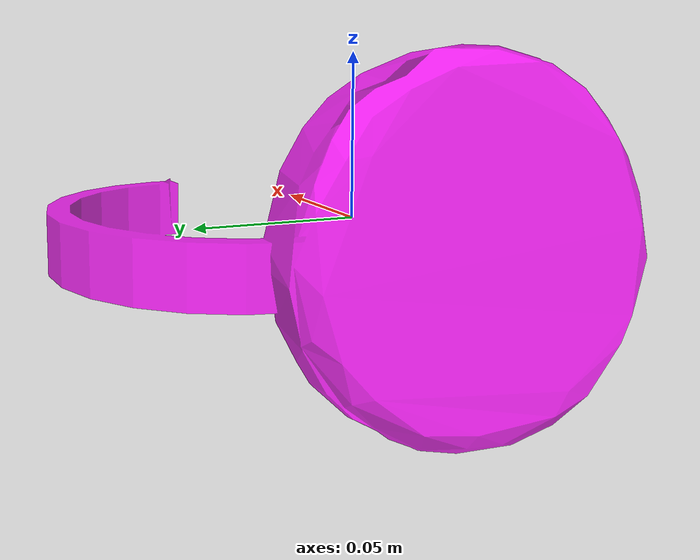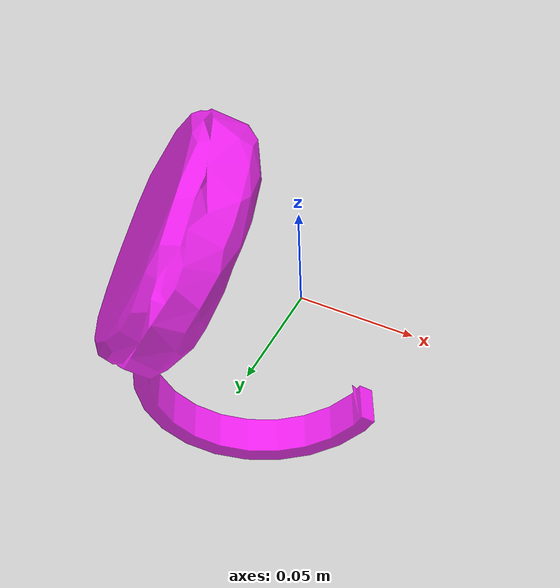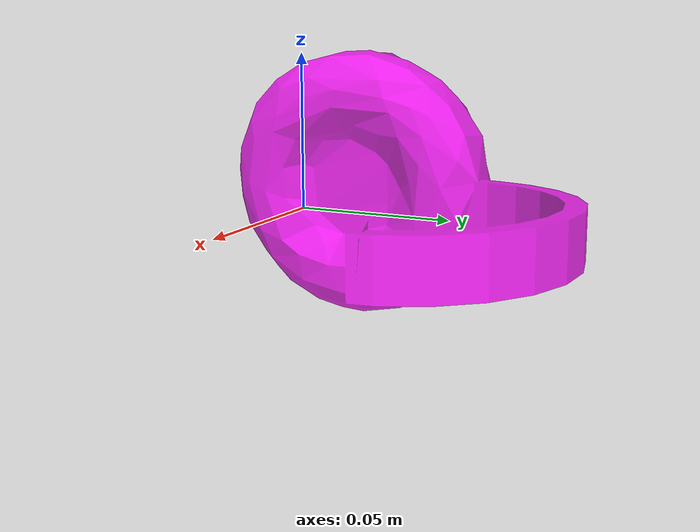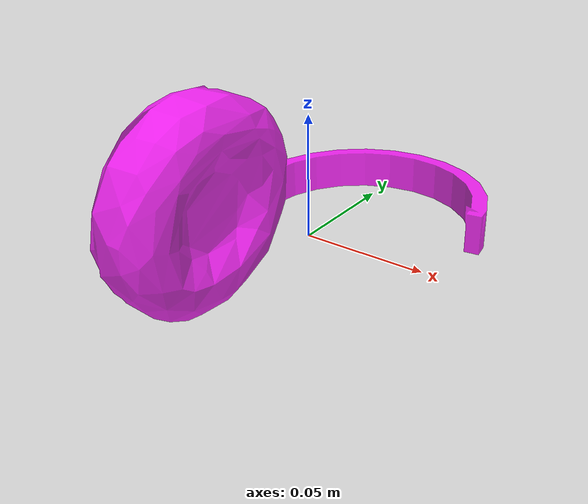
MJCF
<mujoco model="bottom_watertight_tiny">
  <default>
    <default group="2" type="mesh" contype="0" conaffinity="0">
      <geom group="2" type="mesh" contype="0" conaffinity="0"/>
    </default>
    <default group="3" type="mesh">
      <geom group="3" type="mesh"/>
    </default>
  </default>
  <asset>
    <mesh file="bottom_watertight_tiny.obj"/>
    <mesh file="bottom_watertight_tiny_collision_0.obj"/>
    <mesh file="bottom_watertight_tiny_collision_1.obj"/>
    <mesh file="bottom_watertight_tiny_collision_2.obj"/>
    <mesh file="bottom_watertight_tiny_collision_3.obj"/>
    <mesh file="bottom_watertight_tiny_collision_4.obj"/>
    <mesh file="bottom_watertight_tiny_collision_5.obj"/>
    <mesh file="bottom_watertight_tiny_collision_6.obj"/>
    <mesh file="bottom_watertight_tiny_collision_7.obj"/>
    <mesh file="bottom_watertight_tiny_collision_8.obj"/>
    <mesh file="bottom_watertight_tiny_collision_9.obj"/>
    <mesh file="bottom_watertight_tiny_collision_10.obj"/>
    <mesh file="bottom_watertight_tiny_collision_11.obj"/>
    <mesh file="bottom_watertight_tiny_collision_12.obj"/>
    <mesh file="bottom_watertight_tiny_collision_13.obj"/>
    <mesh file="bottom_watertight_tiny_collision_14.obj"/>
    <mesh file="bottom_watertight_tiny_collision_15.obj"/>
    <mesh file="bottom_watertight_tiny_collision_16.obj"/>
    <mesh file="bottom_watertight_tiny_collision_17.obj"/>
    <mesh file="bottom_watertight_tiny_collision_18.obj"/>
    <mesh file="bottom_watertight_tiny_collision_19.obj"/>
    <mesh file="bottom_watertight_tiny_collision_20.obj"/>
    <mesh file="bottom_watertight_tiny_collision_21.obj"/>
    <mesh file="bottom_watertight_tiny_collision_22.obj"/>
    <mesh file="bottom_watertight_tiny_collision_23.obj"/>
    <mesh file="bottom_watertight_tiny_collision_24.obj"/>
    <mesh file="bottom_watertight_tiny_collision_25.obj"/>
    <mesh file="bottom_watertight_tiny_collision_26.obj"/>
    <mesh file="bottom_watertight_tiny_collision_27.obj"/>
    <mesh file="bottom_watertight_tiny_collision_28.obj"/>
    <mesh file="bottom_watertight_tiny_collision_29.obj"/>
    <mesh file="bottom_watertight_tiny_collision_30.obj"/>
    <mesh file="bottom_watertight_tiny_collision_31.obj"/>
    <mesh file="bottom_watertight_tiny_collision_32.obj"/>
    <mesh file="bottom_watertight_tiny_collision_33.obj"/>
    <mesh file="bottom_watertight_tiny_collision_34.obj"/>
    <mesh file="bottom_watertight_tiny_collision_35.obj"/>
    <mesh file="bottom_watertight_tiny_collision_36.obj"/>
    <mesh file="bottom_watertight_tiny_collision_37.obj"/>
    <mesh file="bottom_watertight_tiny_collision_38.obj"/>
    <mesh file="bottom_watertight_tiny_collision_39.obj"/>
    <mesh file="bottom_watertight_tiny_collision_40.obj"/>
    <mesh file="bottom_watertight_tiny_collision_41.obj"/>
    <mesh file="bottom_watertight_tiny_collision_42.obj"/>
    <mesh file="bottom_watertight_tiny_collision_43.obj"/>
    <mesh file="bottom_watertight_tiny_collision_44.obj"/>
    <mesh file="bottom_watertight_tiny_collision_45.obj"/>
    <mesh file="bottom_watertight_tiny_collision_46.obj"/>
    <mesh file="bottom_watertight_tiny_collision_47.obj"/>
    <mesh file="bottom_watertight_tiny_collision_48.obj"/>
    <mesh file="bottom_watertight_tiny_collision_49.obj"/>
    <mesh file="bottom_watertight_tiny_collision_50.obj"/>
    <mesh file="bottom_watertight_tiny_collision_51.obj"/>
    <mesh file="bottom_watertight_tiny_collision_52.obj"/>
    <mesh file="bottom_watertight_tiny_collision_53.obj"/>
    <mesh file="bottom_watertight_tiny_collision_54.obj"/>
    <mesh file="bottom_watertight_tiny_collision_55.obj"/>
    <mesh file="bottom_watertight_tiny_collision_56.obj"/>
    <mesh file="bottom_watertight_tiny_collision_57.obj"/>
    <mesh file="bottom_watertight_tiny_collision_58.obj"/>
    <mesh file="bottom_watertight_tiny_collision_59.obj"/>
    <mesh file="bottom_watertight_tiny_collision_60.obj"/>
    <mesh file="bottom_watertight_tiny_collision_61.obj"/>
    <mesh file="bottom_watertight_tiny_collision_62.obj"/>
    <mesh file="bottom_watertight_tiny_collision_63.obj"/>
    <mesh file="bottom_watertight_tiny_collision_64.obj"/>
    <mesh file="bottom_watertight_tiny_collision_65.obj"/>
    <mesh file="bottom_watertight_tiny_collision_66.obj"/>
    <mesh file="bottom_watertight_tiny_collision_67.obj"/>
    <mesh file="bottom_watertight_tiny_collision_68.obj"/>
    <mesh file="bottom_watertight_tiny_collision_69.obj"/>
    <mesh file="bottom_watertight_tiny_collision_70.obj"/>
  </asset>
  <worldbody>
    <body name="bottom_watertight_tiny">
      <freejoint/>
      <geom mesh="bottom_watertight_tiny" group="2" type="mesh" rgba="1 0 1 0.8" contype="0" conaffinity="0"/>
      <geom mesh="bottom_watertight_tiny_collision_0" rgba="0.6592867806257849 0.3573174434217816 0.4608608192719037 1" group="3" type="mesh"/>
      <geom mesh="bottom_watertight_tiny_collision_1" rgba="0.6421418861547743 0.16549493223008138 0.39859282556516074 1" group="3" type="mesh"/>
      <geom mesh="bottom_watertight_tiny_collision_2" rgba="0.25903409442931447 0.5232087841733615 0.23000872851921306 1" group="3" type="mesh"/>
      <geom mesh="bottom_watertight_tiny_collision_3" rgba="0.8949484596101227 0.08846913889708086 0.49144810260029437 1" group="3" type="mesh"/>
      <geom mesh="bottom_watertight_tiny_collision_4" rgba="0.9504968530676672 0.15953292202656155 0.8555873943349893 1" group="3" type="mesh"/>
      <geom mesh="bottom_watertight_tiny_collision_5" rgba="0.0688235186758841 0.25812536121862717 0.7828257225277115 1" group="3" type="mesh"/>
      <geom mesh="bottom_watertight_tiny_collision_6" rgba="0.37358584604218315 0.24829431422860215 0.3319657404883527 1" group="3" type="mesh"/>
      <geom mesh="bottom_watertight_tiny_collision_7" rgba="0.5370268802678714 0.11432325926180176 0.7425296335953399 1" group="3" type="mesh"/>
      <geom mesh="bottom_watertight_tiny_collision_8" rgba="0.8094767638309782 0.8125778111373577 0.5462056215809941 1" group="3" type="mesh"/>
      <geom mesh="bottom_watertight_tiny_collision_9" rgba="0.9728540350593962 0.47191884233278003 0.4324836731604126 1" group="3" type="mesh"/>
      <geom mesh="bottom_watertight_tiny_collision_10" rgba="0.14151535819988081 0.835298778236344 0.14852168392855514 1" group="3" type="mesh"/>
      <geom mesh="bottom_watertight_tiny_collision_11" rgba="0.19657265281434577 0.03422679006173779 0.8627030313223141 1" group="3" type="mesh"/>
      <geom mesh="bottom_watertight_tiny_collision_12" rgba="0.5078409871926963 0.685863991520105 0.9638418949299303 1" group="3" type="mesh"/>
      <geom mesh="bottom_watertight_tiny_collision_13" rgba="0.5605819212673512 0.7629697077007458 0.8336782968436022 1" group="3" type="mesh"/>
      <geom mesh="bottom_watertight_tiny_collision_14" rgba="0.6591200649319167 0.7562925271720268 0.41302351799834836 1" group="3" type="mesh"/>
      <geom mesh="bottom_watertight_tiny_collision_15" rgba="0.05611794386696223 0.9159238374001146 0.390192273891508 1" group="3" type="mesh"/>
      <geom mesh="bottom_watertight_tiny_collision_16" rgba="0.23613102702801825 0.9569059396012705 0.8900672032648014 1" group="3" type="mesh"/>
      <geom mesh="bottom_watertight_tiny_collision_17" rgba="0.08942288681385013 0.6638038930548412 0.10806716244361636 1" group="3" type="mesh"/>
      <geom mesh="bottom_watertight_tiny_collision_18" rgba="0.7766423702092502 0.6738966531965168 0.8817285019527242 1" group="3" type="mesh"/>
      <geom mesh="bottom_watertight_tiny_collision_19" rgba="0.3530166305500758 0.8812191663436311 0.10974463077678964 1" group="3" type="mesh"/>
      <geom mesh="bottom_watertight_tiny_collision_20" rgba="0.7540260213148359 0.6454005959551651 0.8440433869612437 1" group="3" type="mesh"/>
      <geom mesh="bottom_watertight_tiny_collision_21" rgba="0.11902755166587586 0.08558143969071796 0.12165809542181827 1" group="3" type="mesh"/>
      <geom mesh="bottom_watertight_tiny_collision_22" rgba="0.021528967313941605 0.5789646903747939 0.020036392680441106 1" group="3" type="mesh"/>
      <geom mesh="bottom_watertight_tiny_collision_23" rgba="0.27630851757044284 0.4213725562395735 0.160200085569138 1" group="3" type="mesh"/>
      <geom mesh="bottom_watertight_tiny_collision_24" rgba="0.3324997585001045 0.5389742299984221 0.13399605959835337 1" group="3" type="mesh"/>
      <geom mesh="bottom_watertight_tiny_collision_25" rgba="0.10110214945671181 0.25269117889427695 0.8075444169842204 1" group="3" type="mesh"/>
      <geom mesh="bottom_watertight_tiny_collision_26" rgba="0.7607105244820503 0.8680255388937664 0.9139045711359064 1" group="3" type="mesh"/>
      <geom mesh="bottom_watertight_tiny_collision_27" rgba="0.27506251714338736 0.32780600103907076 0.43579511582823627 1" group="3" type="mesh"/>
      <geom mesh="bottom_watertight_tiny_collision_28" rgba="0.8041322794286316 0.223978211918462 0.1891117864382309 1" group="3" type="mesh"/>
      <geom mesh="bottom_watertight_tiny_collision_29" rgba="0.5345625270060843 0.2620257672368006 0.14391377821732565 1" group="3" type="mesh"/>
      <geom mesh="bottom_watertight_tiny_collision_30" rgba="0.652700749036207 0.9013728460390065 0.7938621784171178 1" group="3" type="mesh"/>
      <geom mesh="bottom_watertight_tiny_collision_31" rgba="0.233107953025806 0.9067150855921511 0.7995624393188909 1" group="3" type="mesh"/>
      <geom mesh="bottom_watertight_tiny_collision_32" rgba="0.12182268474486901 0.19359569573132007 0.2573811906136131 1" group="3" type="mesh"/>
      <geom mesh="bottom_watertight_tiny_collision_33" rgba="0.3491489947702512 0.32065117589064895 0.973535286835817 1" group="3" type="mesh"/>
      <geom mesh="bottom_watertight_tiny_collision_34" rgba="0.9751054938947744 0.25413113194175696 0.013716933502539774 1" group="3" type="mesh"/>
      <geom mesh="bottom_watertight_tiny_collision_35" rgba="0.6822468375553342 0.4928863216099175 0.7440045447992705 1" group="3" type="mesh"/>
      <geom mesh="bottom_watertight_tiny_collision_36" rgba="0.9086853365417981 0.8564702728131397 0.4803831430719998 1" group="3" type="mesh"/>
      <geom mesh="bottom_watertight_tiny_collision_37" rgba="0.2285100091055996 0.15915581390260802 0.7341051147287071 1" group="3" type="mesh"/>
      <geom mesh="bottom_watertight_tiny_collision_38" rgba="0.4986278842664654 0.06474358652168444 0.09652304981133153 1" group="3" type="mesh"/>
      <geom mesh="bottom_watertight_tiny_collision_39" rgba="0.9796670141819864 0.9554716003047216 0.3573939305046604 1" group="3" type="mesh"/>
      <geom mesh="bottom_watertight_tiny_collision_40" rgba="0.9551242444540308 0.5008812488243651 0.20924691897404046 1" group="3" type="mesh"/>
      <geom mesh="bottom_watertight_tiny_collision_41" rgba="0.33090623792070495 0.9612867806306604 0.44482835952169664 1" group="3" type="mesh"/>
      <geom mesh="bottom_watertight_tiny_collision_42" rgba="0.5672957824447522 0.06304569036363916 0.24746420713781958 1" group="3" type="mesh"/>
      <geom mesh="bottom_watertight_tiny_collision_43" rgba="0.03609926856072909 0.393234919066786 0.024993299604860075 1" group="3" type="mesh"/>
      <geom mesh="bottom_watertight_tiny_collision_44" rgba="0.5910013348488263 0.846569751437691 0.12936627037688575 1" group="3" type="mesh"/>
      <geom mesh="bottom_watertight_tiny_collision_45" rgba="0.9106012111475176 0.9211658025137599 0.19429614040614862 1" group="3" type="mesh"/>
      <geom mesh="bottom_watertight_tiny_collision_46" rgba="0.4288711160868284 0.10412284945914152 0.3812558676711314 1" group="3" type="mesh"/>
      <geom mesh="bottom_watertight_tiny_collision_47" rgba="0.0793794248896651 0.07393240226495779 0.885805332066064 1" group="3" type="mesh"/>
      <geom mesh="bottom_watertight_tiny_collision_48" rgba="0.7178019719899625 0.36129830817556396 0.893411022973129 1" group="3" type="mesh"/>
      <geom mesh="bottom_watertight_tiny_collision_49" rgba="0.6851786117966039 0.3481950455935501 0.0584061410235569 1" group="3" type="mesh"/>
      <geom mesh="bottom_watertight_tiny_collision_50" rgba="0.09966810639473556 0.7773511716378203 0.10893276346806535 1" group="3" type="mesh"/>
      <geom mesh="bottom_watertight_tiny_collision_51" rgba="0.5752198597059113 0.22503474921594024 0.338947682493685 1" group="3" type="mesh"/>
      <geom mesh="bottom_watertight_tiny_collision_52" rgba="0.8902021567310336 0.98499230576362 0.0639096778503091 1" group="3" type="mesh"/>
      <geom mesh="bottom_watertight_tiny_collision_53" rgba="0.9705941632631667 0.307470688468242 0.724748448143392 1" group="3" type="mesh"/>
      <geom mesh="bottom_watertight_tiny_collision_54" rgba="0.6308476270654964 0.6529685771449182 0.3865854905957351 1" group="3" type="mesh"/>
      <geom mesh="bottom_watertight_tiny_collision_55" rgba="0.004178558932416476 0.45283027836862955 0.6310015365483594 1" group="3" type="mesh"/>
      <geom mesh="bottom_watertight_tiny_collision_56" rgba="0.560174299707685 0.20063944795286548 0.25970338721429276 1" group="3" type="mesh"/>
      <geom mesh="bottom_watertight_tiny_collision_57" rgba="0.6328023366476663 0.3999465299854321 0.6771326481707299 1" group="3" type="mesh"/>
      <geom mesh="bottom_watertight_tiny_collision_58" rgba="0.13525170334962933 0.04723889382833468 0.2939188376179218 1" group="3" type="mesh"/>
      <geom mesh="bottom_watertight_tiny_collision_59" rgba="0.364744068596102 0.38290886325878704 0.4711993390576511 1" group="3" type="mesh"/>
      <geom mesh="bottom_watertight_tiny_collision_60" rgba="0.9065257143921677 0.005376756476211719 0.26288298578721137 1" group="3" type="mesh"/>
      <geom mesh="bottom_watertight_tiny_collision_61" rgba="0.6624654331175781 0.11448845880110392 0.9211283451133779 1" group="3" type="mesh"/>
      <geom mesh="bottom_watertight_tiny_collision_62" rgba="0.676718282755793 0.060413663723609345 0.13516905525737755 1" group="3" type="mesh"/>
      <geom mesh="bottom_watertight_tiny_collision_63" rgba="0.3791404781069544 0.8992050420247567 0.9007426160875344 1" group="3" type="mesh"/>
      <geom mesh="bottom_watertight_tiny_collision_64" rgba="0.4973447731409698 0.3642061404111643 0.696924788613202 1" group="3" type="mesh"/>
      <geom mesh="bottom_watertight_tiny_collision_65" rgba="0.6504009031166541 0.13324090038319536 0.07449115650452609 1" group="3" type="mesh"/>
      <geom mesh="bottom_watertight_tiny_collision_66" rgba="0.10421395593409732 0.13071936882700075 0.3216425838047322 1" group="3" type="mesh"/>
      <geom mesh="bottom_watertight_tiny_collision_67" rgba="0.5874674517733112 0.5814146791978196 0.08110238758663246 1" group="3" type="mesh"/>
      <geom mesh="bottom_watertight_tiny_collision_68" rgba="0.3352267078319605 0.32854076616508343 0.8383756805102367 1" group="3" type="mesh"/>
      <geom mesh="bottom_watertight_tiny_collision_69" rgba="0.3964500707283294 0.16598616153842538 0.010036368320518907 1" group="3" type="mesh"/>
      <geom mesh="bottom_watertight_tiny_collision_70" rgba="0.8921592829293142 0.3027079606035351 0.05747332802923788 1" group="3" type="mesh"/>
    </body>
  </worldbody>
</mujoco>
